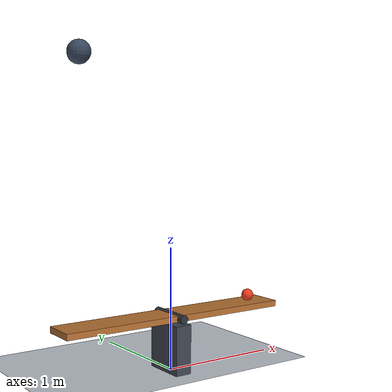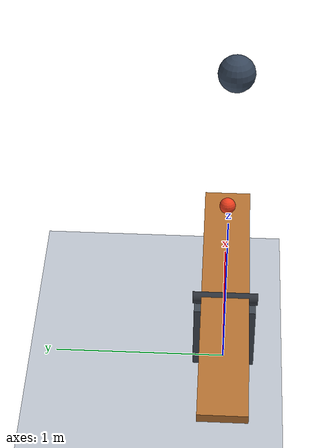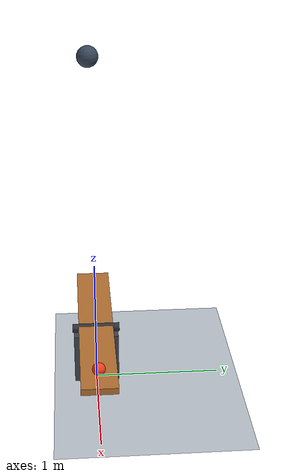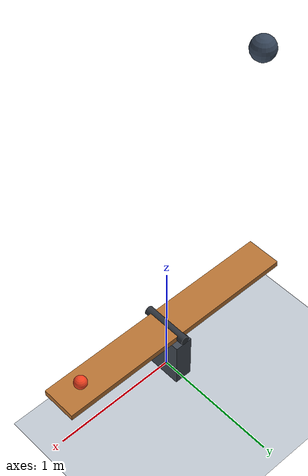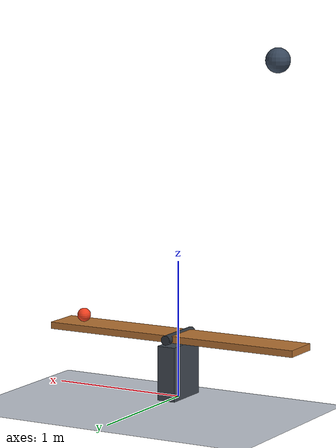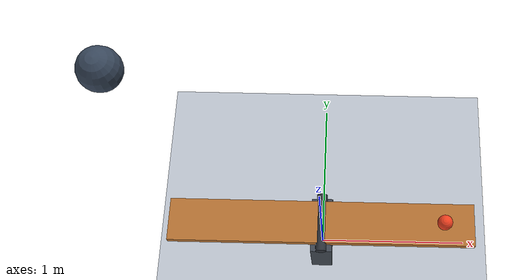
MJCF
<mujoco model="gravity_seesaw_launcher">
  <compiler angle="degree" inertiafromgeom="true"/>
  <option timestep="0.002" gravity="0 0 -9.81" integrator="implicitfast" solver="Newton" iterations="80" cone="elliptic"/>
  <size njmax="200" nconmax="100"/>

  <visual>
    <global azimuth="135" elevation="-20"/>
  </visual>

  <worldbody>
    <light name="overhead" pos="0 -3 5" dir="0 0.5 -1" directional="true"/>

    <geom name="floor" type="plane" pos="0 0 0" size="10 10 0.1" condim="6" friction="0.9 0.03 0.01" solref="0.004 1" solimp="0.99 0.999 0.001" rgba="0.75 0.78 0.82 1"/>

    <geom name="pedestal" type="box" pos="0 0 0.20" size="0.07 0.18 0.20" contype="0" conaffinity="0" rgba="0.25 0.28 0.32 1"/>
    <geom name="pivot_axle" type="cylinder" pos="0 0 0.45" quat="0.70710678 0.70710678 0 0" size="0.035 0.19" contype="0" conaffinity="0" rgba="0.18 0.20 0.23 1"/>

    <body name="seesaw" pos="0 0 0.45">
      <joint name="seesaw_hinge" type="hinge" axis="0 1 0" limited="true" range="-18 0" damping="0.015" armature="0.001" solreflimit="0.004 1" solimplimit="0.99 0.999 0.001"/>
      <geom name="seesaw_plank" type="box" size="1 0.14 0.025" mass="0.18" condim="6" friction="0.9 0.03 0.01" solref="0.004 1" solimp="0.99 0.999 0.001" rgba="0.72 0.45 0.20 1"/>
    </body>

    <body name="weight" pos="-0.8 0 2.5">
      <freejoint name="weight_free"/>
      <geom name="weight_sphere" type="sphere" size="0.09" mass="1" condim="6" friction="0.9 0.03 0.01" solref="0.004 1" solimp="0.99 0.999 0.001" rgba="0.22 0.28 0.36 1"/>
    </body>

    <body name="ball" pos="0.8 0 0.525">
      <freejoint name="ball_free"/>
      <geom name="ball" type="sphere" size="0.05" mass="0.1" condim="6" friction="0.9 0.03 0.01" solref="0.004 1" solimp="0.99 0.999 0.001" rgba="0.95 0.25 0.12 1"/>
    </body>
  </worldbody>

  <keyframe>
    <key name="start" qpos="0 -0.8 0 2.5 1 0 0 0 0.8 0 0.525 1 0 0 0" qvel="0 0 0 0 0 0 0 0 0 0 0 0 0"/>
  </keyframe>
</mujoco>
